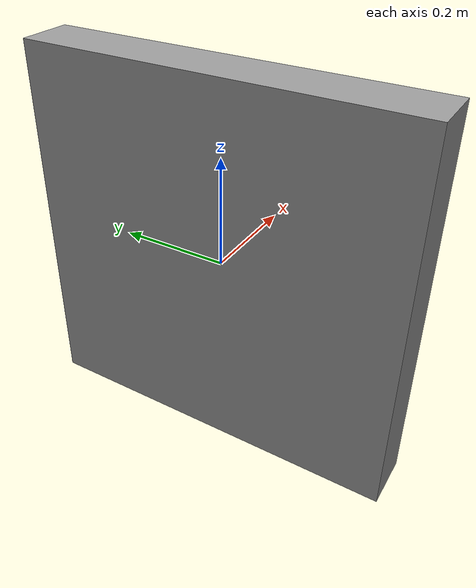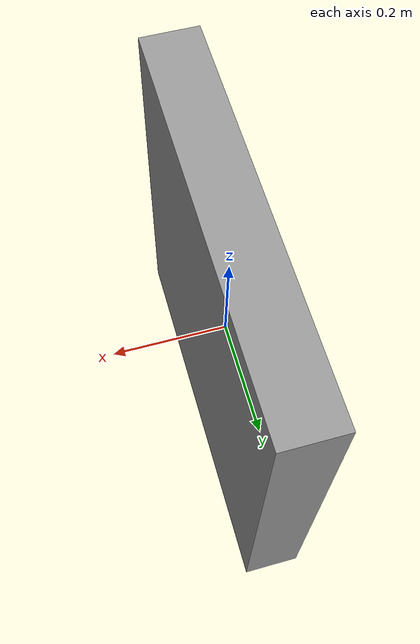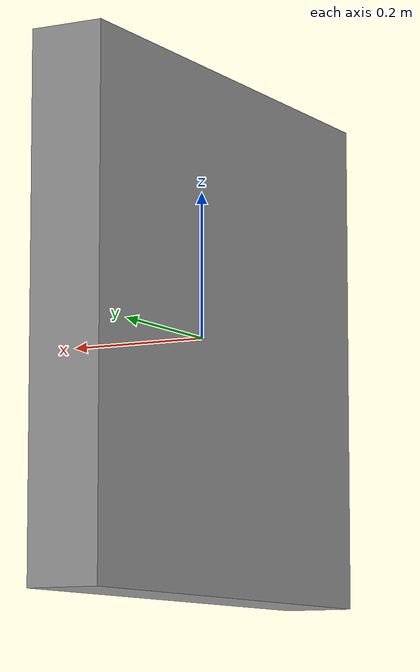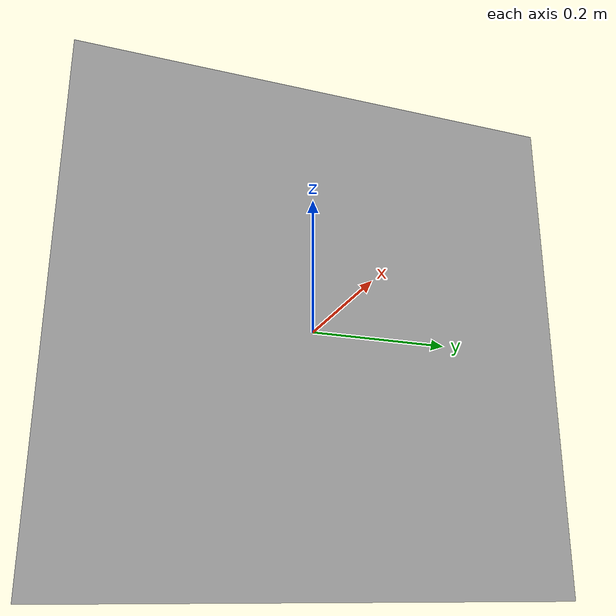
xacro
<?xml version="1.0" ?>
<robot name="kuka_kr150r3100_gazebo" xmlns:xacro="http://wiki.ros.org/xacro">

<!-- camera plugin -->
  <link name="camera">
    <collision>
      <origin rpy="0 0 0" xyz="0 0 0"/>
      <geometry>
        <box size="0.1 0.7 0.7"/>
      </geometry>
    </collision>
    <visual>
      <origin rpy="0 0 0" xyz="0 0 0"/>
      <geometry>
        <box size="0.1 0.7 0.7"/>
      </geometry>
      <material name="grey"/>
    </visual>
    <inertial>
      <mass value="0.1"/>
      <origin rpy="0 0 0" xyz="0 0 0"/>
      <box_inertia m="0.1" x="0.1" y="0.7" z="0.7"/>
      <inertia ixx="1e-6" ixy="0" ixz="0" iyy="1e-6" iyz="0" izz="1e-6"/>
    </inertial>

    <joint name="camera_optical_joint" type="fixed">
    <origin rpy="-1.5708 0 -1.5708" xyz="0 0 0"/>
    <parent link="camera"/>
    <child link="camera_frame_optical"/>
  </joint>
  <link name="camera_frame_optical"/>
  <joint name="camera_joint" type="fixed">
    <axis xyz="0 0 0"/>
    <origin rpy="0 1.5708 0" xyz="0.5 0 2.0"/>
    <parent link="base_link"/>
    <child link="camera"/>
  </joint>
  </link>

  <!-- depth camera -->
  <gazebo reference="camera">
    <sensor name="camera1" type="depth">
      <update_rate>20</update_rate>
      <camera>
        <horizontal_fov>1.2</horizontal_fov>
        <image>
          <width>640</width>
          <height>480</height>
          <format>R8G8B8</format>
        </image>
        <clip>
          <near>0.05</near>
          <far>30</far>
        </clip>
      </camera>
      <plugin filename="libgazebo_ros_openni_kinect.so" name="camera_controller">
        <baseline>0.2</baseline>
        <alwaysOn>false</alwaysOn>
        <updateRate>1.0</updateRate>
        <cameraName>camera1</cameraName>
        <imageTopicName>/camera1/color/image_raw</imageTopicName>
        <cameraInfoTopicName>/camera1/color/camera_info</cameraInfoTopicName>
        <depthImageTopicName>/camera1/depth/image_raw</depthImageTopicName>
        <depthImageInfoTopicName>/camera1/depth/camera_info</depthImageInfoTopicName>
        <pointCloudTopicName>/camera1/depth/points</pointCloudTopicName>
        <frameName>camera_frame_optical</frameName>
        <pointCloudCutoff>0.5</pointCloudCutoff>
        <pointCloudCutoffMax>3.0</pointCloudCutoffMax>
        <distortionK1>0.00000001</distortionK1>
        <distortionK2>0.00000001</distortionK2>
        <distortionK3>0.00000001</distortionK3>
        <distortionT1>0.00000001</distortionT1>
        <distortionT2>0.00000001</distortionT2>
        <CxPrime>0</CxPrime>
        <Cx>0</Cx>
        <Cy>0</Cy>
        <focalLength>0</focalLength>
        <hackBaseline>0</hackBaseline>
      </plugin>
    </sensor>
  </gazebo>
</robot>
